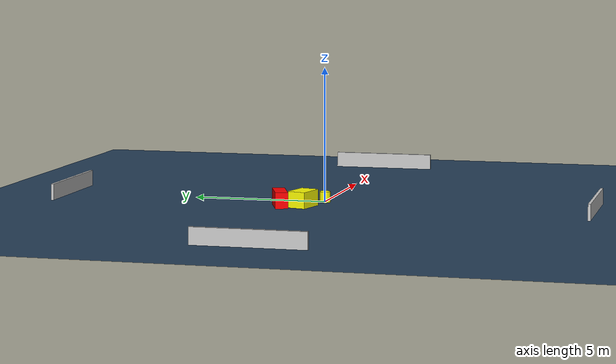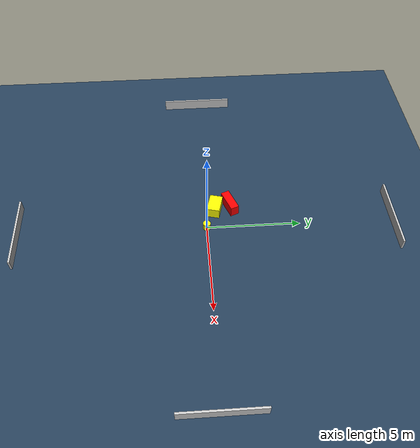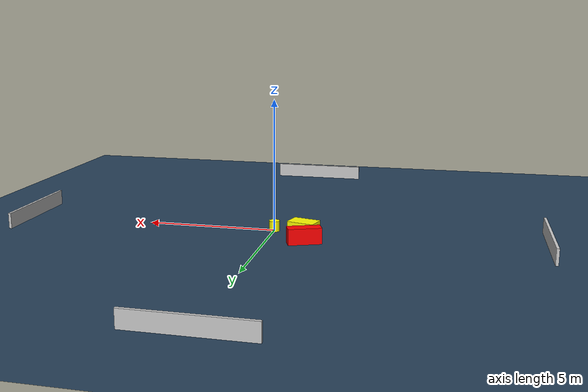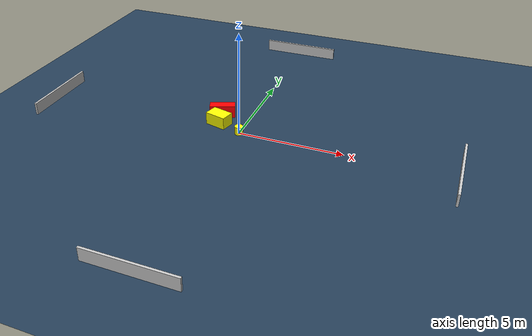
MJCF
<?xml version="1.0" ?>
<mujoco model="generated_environment">
  <option timestep="0.01" integrator="RK4" cone="elliptic"/>
  <default>
    <geom density="1"/>
  </default>
  <asset>
    <texture builtin="gradient" height="3072" name="skybox" rgb1="0.3 0.5 0.7" rgb2="0 0 0" type="skybox" width="512"/>
    <texture builtin="checker" height="300" name="groundplane" rgb1="0.2 0.3 0.4" rgb2="0.1 0.2 0.3" type="2d" width="300"/>
    <material name="groundplane" reflectance="0.2" texrepeat="5 5" texture="groundplane"/>
  </asset>
  <worldbody>
    <light dir="0 0 -1" directional="true" pos="0 0 1.5"/>
    <geom condim="3" friction="0.5 0.005 0.001" material="groundplane" name="floor" pos="0 0 0" size="0 0 0.05" type="plane"/>
    <body name="walls">
      <geom name="wall_1" condim="4" pos="-10.0 0.0 0.3" rgba="0.800000011920929 0.800000011920929 0.800000011920929 1.0" size="0.05 2.0 0.3" type="box"/>
      <geom name="wall_2" condim="4" pos="10.0 0.0 0.3" rgba="0.800000011920929 0.800000011920929 0.800000011920929 1.0" size="0.05 2.0 0.3" type="box"/>
      <geom name="wall_3" condim="4" pos="0.0 -10.0 0.3" rgba="0.800000011920929 0.800000011920929 0.800000011920929 1.0" size="2.0 0.05 0.3" type="box"/>
      <geom name="wall_4" condim="4" pos="0.0 10.0 0.3" rgba="0.800000011920929 0.800000011920929 0.800000011920929 1.0" size="2.0 0.05 0.3" type="box"/>
    </body>
    <body name="robot">
      <joint name="joint_x" type="slide" pos="0 0 0" axis="1 0 0"/>
      <joint name="joint_y" type="slide" pos="0 0 0" axis="0 1 0"/>
      <geom name="robot" type="cylinder" pos="0.0 0.0 0.2" size="0.2 0.2 0.0" mass="5.0" friction="1.0 0.005 0.0001" condim="4" rgba="1.0 1.0 0.0 1.0"/>
    </body>
    <body name="obstacle_1_movable">
      <geom name="obstacle_1_movable" condim="4" pos="-1.2284575776322375 0.5100322858156873 0.3" euler="0 0 75.41586296442365" friction="0.0 0.005 0.001" rgba="1.0 1.0 0.0 1.0" size="0.34240270309591736 0.5195216126675448 0.3" type="box" mass="0.1"/>
      <joint type="free"/>
    </body>
    <body name="obstacle_2_static">
      <geom name="obstacle_2_static" condim="4" pos="-1.4036414761729765 1.3427990389784266 0.3" euler="0 0 201.46673641899787" friction="0.0 0.005 0.001" rgba="1.0 0.0 0.0 1.0" size="0.6221508204002415 0.23033681783291576 0.3" type="box"/>
    </body>
  </worldbody>
  <actuator>
    <motor name="actuator_x" joint="joint_x" gear="1" ctrlrange="-1 1"/>
    <motor name="actuator_y" joint="joint_y" gear="1" ctrlrange="-1 1"/>
  </actuator>
</mujoco>
